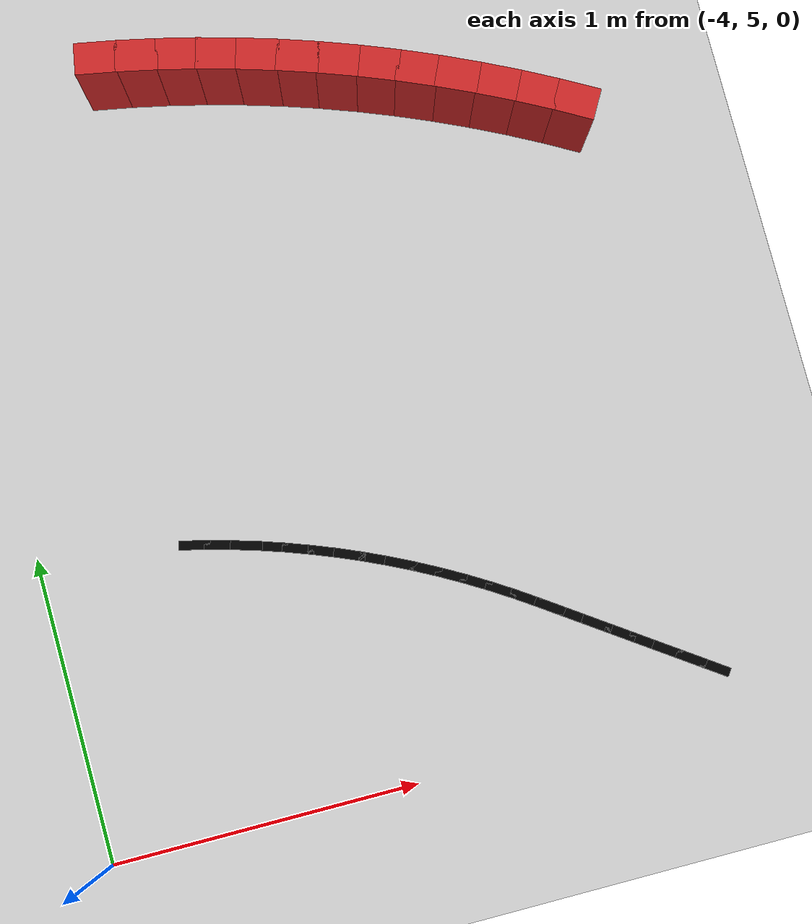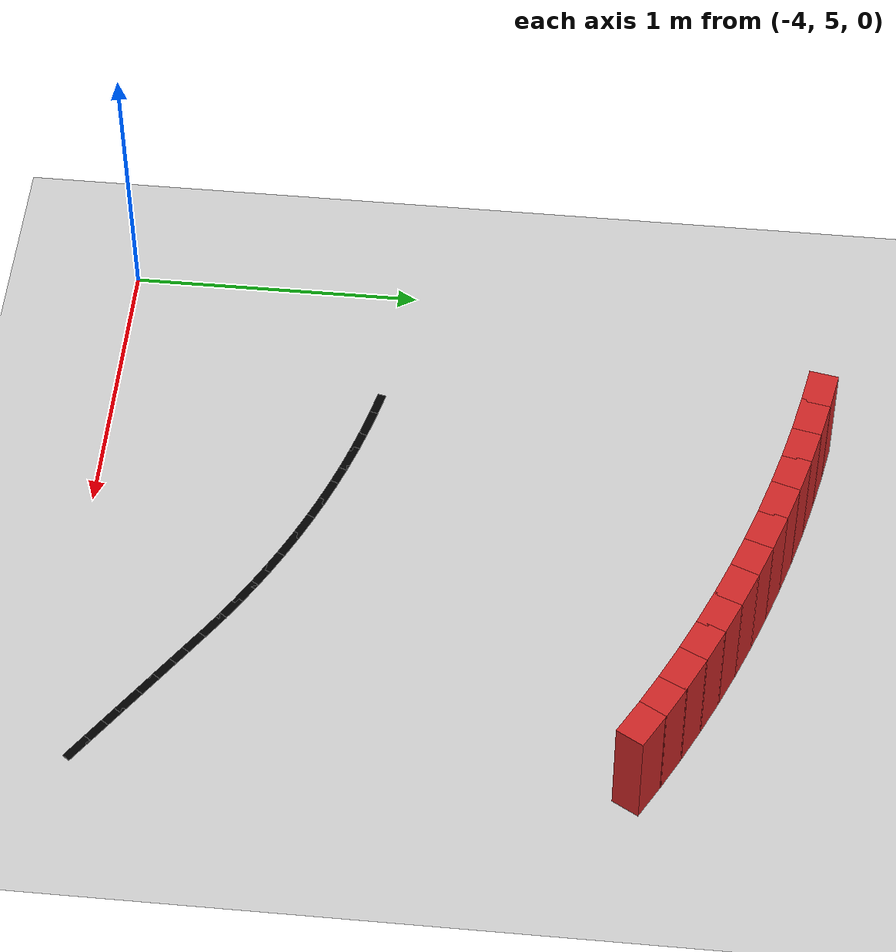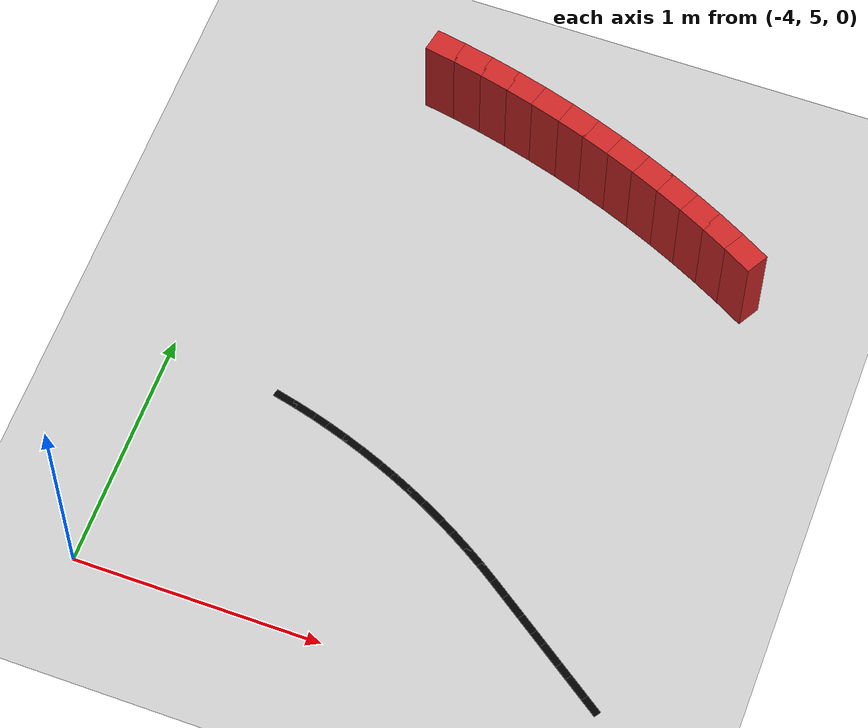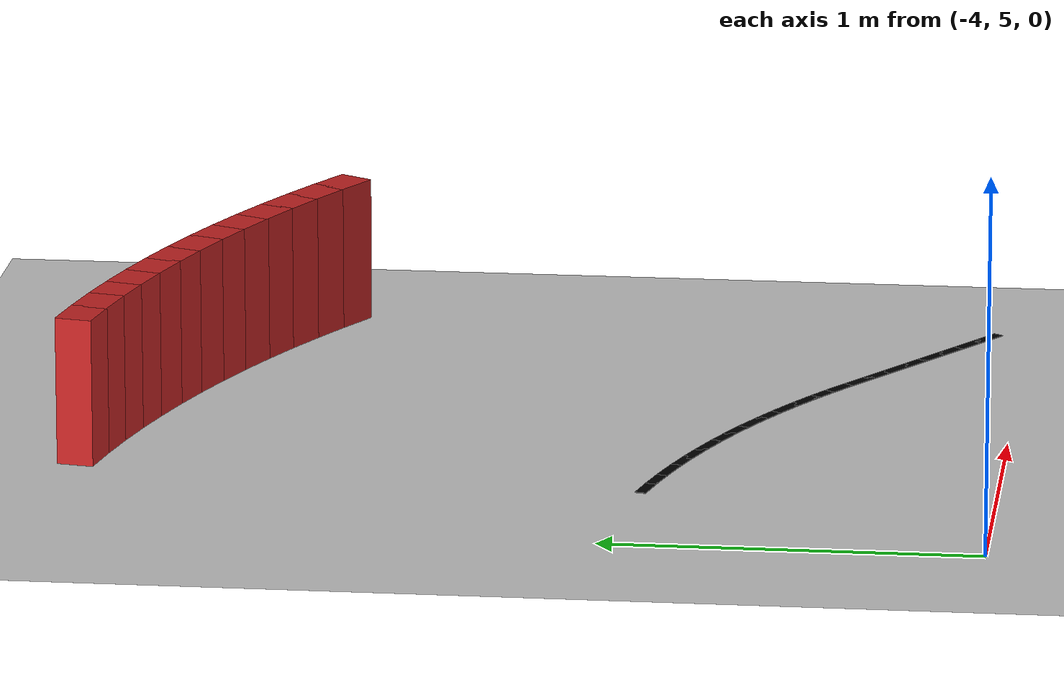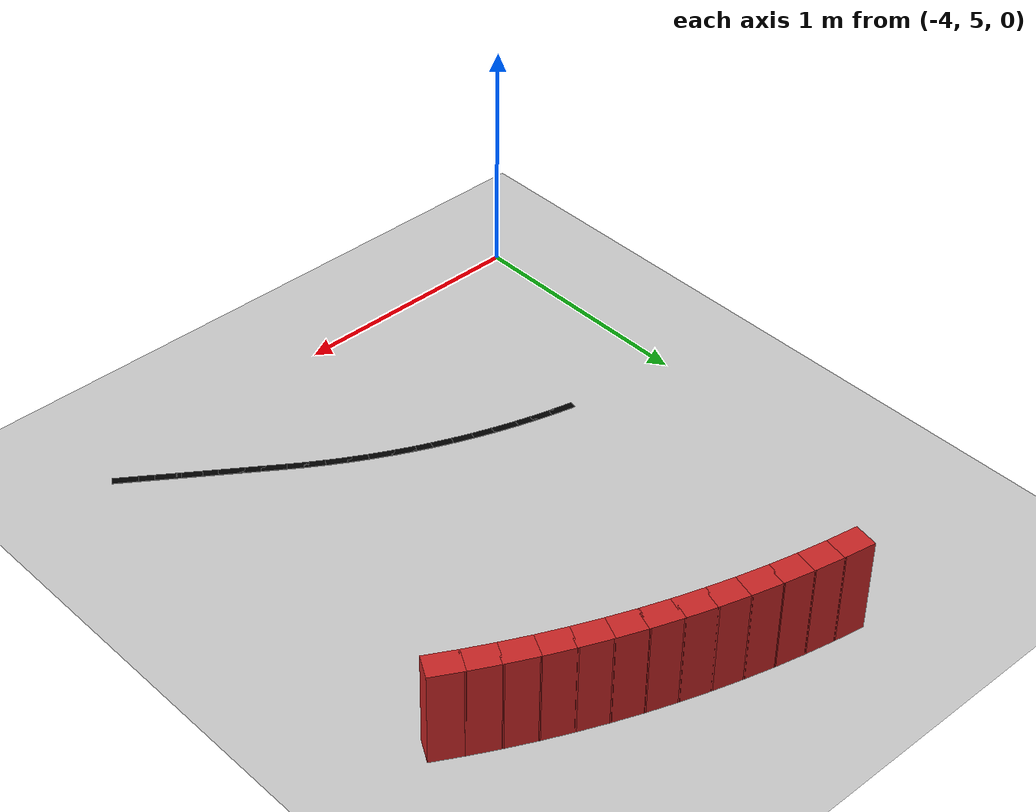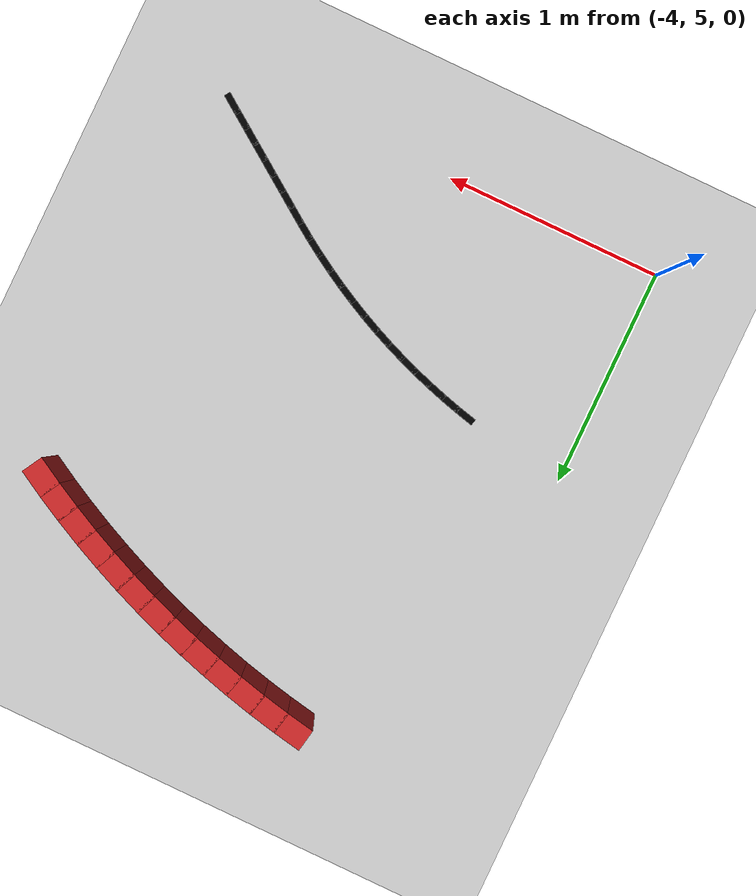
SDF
<sdf version="1.6">
 <world name="new_race_track">
  <include><uri>model://ground_plane</uri></include>
  <include><uri>model://sun</uri></include>
  <model name="race_track">
   <static>true</static>
   <link name="wall_link_764">
    <collision name="c"><geometry><box><size>0.1333 0.1 0.4</size></box></geometry></collision>
    <visual name="v">
     <geometry><box><size>0.1333 0.1 0.4</size></box></geometry>
     <material><ambient>0.8 0.15 0.15 1</ambient><diffuse>0.8 0.15 0.15 1</diffuse></material>
    </visual>
    <pose>-1.9910 6.9190 0.200 0 0 2.6279</pose>
   </link>
   <link name="wall_link_765">
    <collision name="c"><geometry><box><size>0.1333 0.1 0.4</size></box></geometry></collision>
    <visual name="v">
     <geometry><box><size>0.1333 0.1 0.4</size></box></geometry>
     <material><ambient>0.8 0.15 0.15 1</ambient><diffuse>0.8 0.15 0.15 1</diffuse></material>
    </visual>
    <pose>-2.1006 6.9789 0.200 0 0 2.6557</pose>
   </link>
   <link name="wall_link_766">
    <collision name="c"><geometry><box><size>0.1333 0.1 0.4</size></box></geometry></collision>
    <visual name="v">
     <geometry><box><size>0.1333 0.1 0.4</size></box></geometry>
     <material><ambient>0.8 0.15 0.15 1</ambient><diffuse>0.8 0.15 0.15 1</diffuse></material>
    </visual>
    <pose>-2.2119 7.0357 0.200 0 0 2.6834</pose>
   </link>
   <link name="wall_link_767">
    <collision name="c"><geometry><box><size>0.1333 0.1 0.4</size></box></geometry></collision>
    <visual name="v">
     <geometry><box><size>0.1333 0.1 0.4</size></box></geometry>
     <material><ambient>0.8 0.15 0.15 1</ambient><diffuse>0.8 0.15 0.15 1</diffuse></material>
    </visual>
    <pose>-2.3247 7.0894 0.200 0 0 2.7112</pose>
   </link>
   <link name="wall_link_768">
    <collision name="c"><geometry><box><size>0.1333 0.1 0.4</size></box></geometry></collision>
    <visual name="v">
     <geometry><box><size>0.1333 0.1 0.4</size></box></geometry>
     <material><ambient>0.8 0.15 0.15 1</ambient><diffuse>0.8 0.15 0.15 1</diffuse></material>
    </visual>
    <pose>-2.4390 7.1399 0.200 0 0 2.7390</pose>
   </link>
   <link name="wall_link_769">
    <collision name="c"><geometry><box><size>0.1333 0.1 0.4</size></box></geometry></collision>
    <visual name="v">
     <geometry><box><size>0.1333 0.1 0.4</size></box></geometry>
     <material><ambient>0.8 0.15 0.15 1</ambient><diffuse>0.8 0.15 0.15 1</diffuse></material>
    </visual>
    <pose>-2.5546 7.1873 0.200 0 0 2.7667</pose>
   </link>
   <link name="wall_link_770">
    <collision name="c"><geometry><box><size>0.1333 0.1 0.4</size></box></geometry></collision>
    <visual name="v">
     <geometry><box><size>0.1333 0.1 0.4</size></box></geometry>
     <material><ambient>0.8 0.15 0.15 1</ambient><diffuse>0.8 0.15 0.15 1</diffuse></material>
    </visual>
    <pose>-2.6715 7.2314 0.200 0 0 2.7945</pose>
   </link>
   <link name="wall_link_771">
    <collision name="c"><geometry><box><size>0.1333 0.1 0.4</size></box></geometry></collision>
    <visual name="v">
     <geometry><box><size>0.1333 0.1 0.4</size></box></geometry>
     <material><ambient>0.8 0.15 0.15 1</ambient><diffuse>0.8 0.15 0.15 1</diffuse></material>
    </visual>
    <pose>-2.7895 7.2723 0.200 0 0 2.8223</pose>
   </link>
   <link name="wall_link_772">
    <collision name="c"><geometry><box><size>0.1333 0.1 0.4</size></box></geometry></collision>
    <visual name="v">
     <geometry><box><size>0.1333 0.1 0.4</size></box></geometry>
     <material><ambient>0.8 0.15 0.15 1</ambient><diffuse>0.8 0.15 0.15 1</diffuse></material>
    </visual>
    <pose>-2.9087 7.3098 0.200 0 0 2.8500</pose>
   </link>
   <link name="wall_link_773">
    <collision name="c"><geometry><box><size>0.1333 0.1 0.4</size></box></geometry></collision>
    <visual name="v">
     <geometry><box><size>0.1333 0.1 0.4</size></box></geometry>
     <material><ambient>0.8 0.15 0.15 1</ambient><diffuse>0.8 0.15 0.15 1</diffuse></material>
    </visual>
    <pose>-3.0288 7.3441 0.200 0 0 2.8778</pose>
   </link>
   <link name="wall_link_774">
    <collision name="c"><geometry><box><size>0.1333 0.1 0.4</size></box></geometry></collision>
    <visual name="v">
     <geometry><box><size>0.1333 0.1 0.4</size></box></geometry>
     <material><ambient>0.8 0.15 0.15 1</ambient><diffuse>0.8 0.15 0.15 1</diffuse></material>
    </visual>
    <pose>-3.1499 7.3750 0.200 0 0 2.9056</pose>
   </link>
   <link name="wall_link_775">
    <collision name="c"><geometry><box><size>0.1333 0.1 0.4</size></box></geometry></collision>
    <visual name="v">
     <geometry><box><size>0.1333 0.1 0.4</size></box></geometry>
     <material><ambient>0.8 0.15 0.15 1</ambient><diffuse>0.8 0.15 0.15 1</diffuse></material>
    </visual>
    <pose>-3.2718 7.4025 0.200 0 0 2.9333</pose>
   </link>
   <link name="wall_link_776">
    <collision name="c"><geometry><box><size>0.1333 0.1 0.4</size></box></geometry></collision>
    <visual name="v">
     <geometry><box><size>0.1333 0.1 0.4</size></box></geometry>
     <material><ambient>0.8 0.15 0.15 1</ambient><diffuse>0.8 0.15 0.15 1</diffuse></material>
    </visual>
    <pose>-3.3944 7.4266 0.200 0 0 2.9611</pose>
   </link>
   <link name="line_link_1466">
    <visual name="v">
     <geometry><box><size>0.1000 0.03 0.002</size></box></geometry>
     <material><ambient>0 0 0 1</ambient><diffuse>0 0 0 1</diffuse></material>
    </visual>
    <pose>-1.9899 5.1133 0.002 0 0 2.5307</pose>
   </link>
   <link name="line_link_1467">
    <visual name="v">
     <geometry><box><size>0.1000 0.03 0.002</size></box></geometry>
     <material><ambient>0 0 0 1</ambient><diffuse>0 0 0 1</diffuse></material>
    </visual>
    <pose>-2.0554 5.1592 0.002 0 0 2.5307</pose>
   </link>
   <link name="line_link_1468">
    <visual name="v">
     <geometry><box><size>0.1000 0.03 0.002</size></box></geometry>
     <material><ambient>0 0 0 1</ambient><diffuse>0 0 0 1</diffuse></material>
    </visual>
    <pose>-2.1209 5.2051 0.002 0 0 2.5307</pose>
   </link>
   <link name="line_link_1469">
    <visual name="v">
     <geometry><box><size>0.1000 0.03 0.002</size></box></geometry>
     <material><ambient>0 0 0 1</ambient><diffuse>0 0 0 1</diffuse></material>
    </visual>
    <pose>-2.1865 5.2510 0.002 0 0 2.5307</pose>
   </link>
   <link name="line_link_1470">
    <visual name="v">
     <geometry><box><size>0.1000 0.03 0.002</size></box></geometry>
     <material><ambient>0 0 0 1</ambient><diffuse>0 0 0 1</diffuse></material>
    </visual>
    <pose>-2.2520 5.2969 0.002 0 0 2.5307</pose>
   </link>
   <link name="line_link_1471">
    <visual name="v">
     <geometry><box><size>0.1000 0.03 0.002</size></box></geometry>
     <material><ambient>0 0 0 1</ambient><diffuse>0 0 0 1</diffuse></material>
    </visual>
    <pose>-2.3175 5.3427 0.002 0 0 2.5307</pose>
   </link>
   <link name="line_link_1472">
    <visual name="v">
     <geometry><box><size>0.1000 0.03 0.002</size></box></geometry>
     <material><ambient>0 0 0 1</ambient><diffuse>0 0 0 1</diffuse></material>
    </visual>
    <pose>-2.3830 5.3886 0.002 0 0 2.5307</pose>
   </link>
   <link name="line_link_1473">
    <visual name="v">
     <geometry><box><size>0.1000 0.03 0.002</size></box></geometry>
     <material><ambient>0 0 0 1</ambient><diffuse>0 0 0 1</diffuse></material>
    </visual>
    <pose>-2.4486 5.4345 0.002 0 0 2.5307</pose>
   </link>
   <link name="line_link_1474">
    <visual name="v">
     <geometry><box><size>0.1033 0.03 0.002</size></box></geometry>
     <material><ambient>0 0 0 1</ambient><diffuse>0 0 0 1</diffuse></material>
    </visual>
    <pose>-2.5158 5.4809 0.002 0 0 2.5446</pose>
   </link>
   <link name="line_link_1475">
    <visual name="v">
     <geometry><box><size>0.1033 0.03 0.002</size></box></geometry>
     <material><ambient>0 0 0 1</ambient><diffuse>0 0 0 1</diffuse></material>
    </visual>
    <pose>-2.5853 5.5267 0.002 0 0 2.5724</pose>
   </link>
   <link name="line_link_1476">
    <visual name="v">
     <geometry><box><size>0.1033 0.03 0.002</size></box></geometry>
     <material><ambient>0 0 0 1</ambient><diffuse>0 0 0 1</diffuse></material>
    </visual>
    <pose>-2.6561 5.5706 0.002 0 0 2.6001</pose>
   </link>
   <link name="line_link_1477">
    <visual name="v">
     <geometry><box><size>0.1033 0.03 0.002</size></box></geometry>
     <material><ambient>0 0 0 1</ambient><diffuse>0 0 0 1</diffuse></material>
    </visual>
    <pose>-2.7281 5.6126 0.002 0 0 2.6279</pose>
   </link>
   <link name="line_link_1478">
    <visual name="v">
     <geometry><box><size>0.1033 0.03 0.002</size></box></geometry>
     <material><ambient>0 0 0 1</ambient><diffuse>0 0 0 1</diffuse></material>
    </visual>
    <pose>-2.8012 5.6525 0.002 0 0 2.6557</pose>
   </link>
   <link name="line_link_1479">
    <visual name="v">
     <geometry><box><size>0.1033 0.03 0.002</size></box></geometry>
     <material><ambient>0 0 0 1</ambient><diffuse>0 0 0 1</diffuse></material>
    </visual>
    <pose>-2.8753 5.6904 0.002 0 0 2.6834</pose>
   </link>
   <link name="line_link_1480">
    <visual name="v">
     <geometry><box><size>0.1033 0.03 0.002</size></box></geometry>
     <material><ambient>0 0 0 1</ambient><diffuse>0 0 0 1</diffuse></material>
    </visual>
    <pose>-2.9505 5.7262 0.002 0 0 2.7112</pose>
   </link>
   <link name="line_link_1481">
    <visual name="v">
     <geometry><box><size>0.1033 0.03 0.002</size></box></geometry>
     <material><ambient>0 0 0 1</ambient><diffuse>0 0 0 1</diffuse></material>
    </visual>
    <pose>-3.0267 5.7599 0.002 0 0 2.7390</pose>
   </link>
   <link name="line_link_1482">
    <visual name="v">
     <geometry><box><size>0.1033 0.03 0.002</size></box></geometry>
     <material><ambient>0 0 0 1</ambient><diffuse>0 0 0 1</diffuse></material>
    </visual>
    <pose>-3.1038 5.7914 0.002 0 0 2.7667</pose>
   </link>
   <link name="line_link_1483">
    <visual name="v">
     <geometry><box><size>0.1033 0.03 0.002</size></box></geometry>
     <material><ambient>0 0 0 1</ambient><diffuse>0 0 0 1</diffuse></material>
    </visual>
    <pose>-3.1817 5.8208 0.002 0 0 2.7945</pose>
   </link>
   <link name="line_link_1484">
    <visual name="v">
     <geometry><box><size>0.1033 0.03 0.002</size></box></geometry>
     <material><ambient>0 0 0 1</ambient><diffuse>0 0 0 1</diffuse></material>
    </visual>
    <pose>-3.2604 5.8481 0.002 0 0 2.8223</pose>
   </link>
   <link name="line_link_1485">
    <visual name="v">
     <geometry><box><size>0.1033 0.03 0.002</size></box></geometry>
     <material><ambient>0 0 0 1</ambient><diffuse>0 0 0 1</diffuse></material>
    </visual>
    <pose>-3.3398 5.8731 0.002 0 0 2.8500</pose>
   </link>
   <link name="line_link_1486">
    <visual name="v">
     <geometry><box><size>0.1033 0.03 0.002</size></box></geometry>
     <material><ambient>0 0 0 1</ambient><diffuse>0 0 0 1</diffuse></material>
    </visual>
    <pose>-3.4199 5.8960 0.002 0 0 2.8778</pose>
   </link>
   <link name="line_link_1487">
    <visual name="v">
     <geometry><box><size>0.1033 0.03 0.002</size></box></geometry>
     <material><ambient>0 0 0 1</ambient><diffuse>0 0 0 1</diffuse></material>
    </visual>
    <pose>-3.5006 5.9166 0.002 0 0 2.9056</pose>
   </link>
  </model>
 </world>
</sdf>
